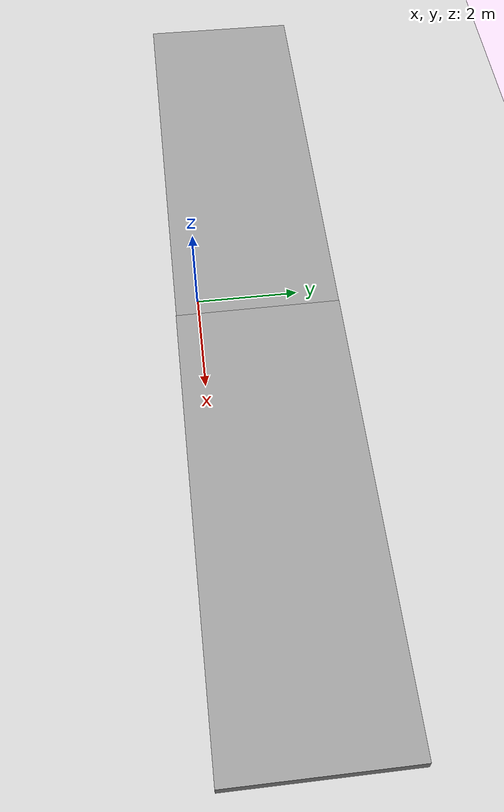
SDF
<sdf version="1.4">
 <world name="default">
  <light name="sun" type="directional">
   <pose>0 0 10 0 -0 0</pose>
   <diffuse>0.8 0.8 0.8 1</diffuse>
   <specular>0.2 0.2 0.2 1</specular>
   <attenuation>
    <range>1000</range>
    <constant>0.9</constant>
    <linear>0.01</linear>
    <quadratic>0.001</quadratic>
   </attenuation>
   <direction>-0.5 0.1 -0.9</direction>
  </light>
  <model name="ground_plane">
   <static>1</static>
   <link name="link">
    <collision name="collision">
     <geometry><plane><normal>0 0 1</normal><size>100 100</size></plane></geometry>
     <surface><friction><ode><mu>100</mu><mu2>50</mu2></ode></friction></surface>
    </collision>
    <visual name="visual">
     <cast_shadows>0</cast_shadows>
     <geometry><plane><normal>0 0 1</normal><size>100 100</size></plane></geometry>
     <material>
      <script><uri>file://media/materials/scripts/gazebo.material</uri><name>Gazebo/Grey</name></script>
     </material>
    </visual>
    <velocity_decay><linear>0</linear><angular>0</angular></velocity_decay>
   </link>
  </model>
  <physics type="ode">
   <max_step_size>0.001</max_step_size>
   <real_time_factor>1</real_time_factor>
   <real_time_update_rate>1000</real_time_update_rate>
   <gravity>0 0 -9.8</gravity>
  </physics>
  <scene><ambient>0.4 0.4 0.4 1</ambient><background>0.7 0.7 0.7 1</background><shadows>1</shadows></scene>
  <spherical_coordinates>
   <surface_model>EARTH_WGS84</surface_model>
   <latitude_deg>0</latitude_deg>
   <longitude_deg>0</longitude_deg>
   <elevation>0</elevation>
   <heading_deg>0</heading_deg>
  </spherical_coordinates>
  <model name="grey_wall">
   <static>1</static>
   <link name="link">
    <pose>0 0 1.4 0 -0 0</pose>
    <collision name="collision"><geometry><box><size>7.5 0.2 2.8</size></box></geometry></collision>
    <visual name="visual">
     <cast_shadows>0</cast_shadows>
     <geometry><box><size>7.5 0.2 2.8</size></box></geometry>
     <material>
      <script>
       <uri>model://grey_wall/materials/scripts</uri>
       <uri>model://grey_wall/materials/textures</uri>
       <name>vrc/grey_wall</name>
      </script>
     </material>
    </visual>
    <velocity_decay><linear>0</linear><angular>0</angular></velocity_decay>
   </link>
   <pose>-1.69588 -0.41048 2.24894 -1.57844 0 0</pose>
  </model>
  <model name="grey_wall_0">
   <static>1</static>
   <link name="link">
    <pose>0 0 1.4 0 -0 0</pose>
    <collision name="collision"><geometry><box><size>7.5 0.2 2.8</size></box></geometry></collision>
    <visual name="visual">
     <cast_shadows>0</cast_shadows>
     <geometry><box><size>7.5 0.2 2.8</size></box></geometry>
     <material>
      <script>
       <uri>model://grey_wall/materials/scripts</uri>
       <uri>model://grey_wall/materials/textures</uri>
       <name>vrc/grey_wall</name>
      </script>
     </material>
    </visual>
    <velocity_decay><linear>0</linear><angular>0</angular></velocity_decay>
   </link>
   <pose>5.78744 2.38427 2.27803 1.57645 -0 0</pose>
  </model>
 </world>
</sdf>
